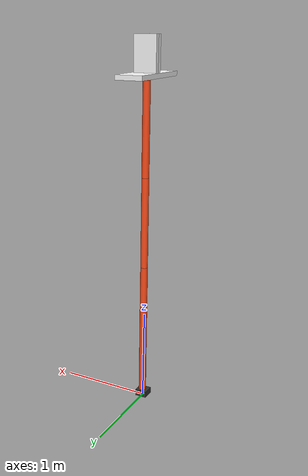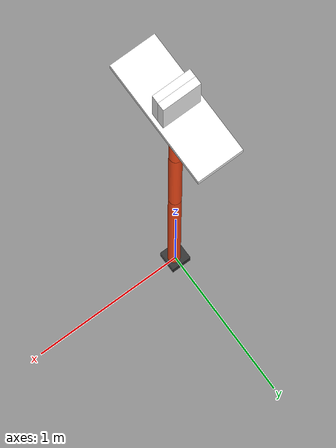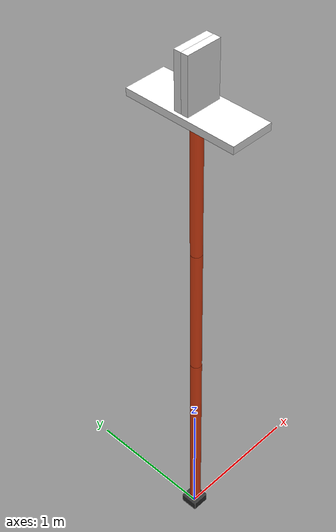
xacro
<?xml version="1.0"?>
<robot xmlns:xacro="http://www.ros.org/wiki/xacro"  name="robot">

    <material name="grey">
        <color rgba="0.2 0.2 0.2 1"/>
    </material>

    <material name="white">
        <color rgba="1 1 1 1"/>
    </material>

    <material name="orange">
        <color rgba="1 0.3 0.1 1"/>
    </material>

    <material name="blue">
        <color rgba="0 0 1 1"/>
    </material>

    <link name="world"></link>

    <joint name="world_to_base" type="fixed">
        <parent link="world" />
        <child link="base" />
        <origin  rpy="1.57 0 0" xyz="0 0 0" />
    </joint>

    <link name="base">
        <visual>
            <origin xyz="0 0.035 0" rpy="0 0 0"/>
            <geometry>
                <box size="0.13 0.07 0.13" />
            </geometry>
            <material name="grey" />
        </visual>
    </link>

    <joint name="base_to_l3" type="revolute">
        <parent link="base" />
        <child link="l3" />
        <origin  rpy="0 0 0" xyz="0 0.07 0" />
        <axis rpy="0 0 0" xyz="0 1 0" />
        <!-- changed axis to rotate around -->
        <limit effort="0.1" lower="-3.1" upper="3.1" velocity="0.2"/>
    </joint>

    <link name="l3">
        <visual>
            <origin xyz="0.005 0 0" rpy="0 1.57 0"/>
            <geometry>
                <cylinder length="0.01" radius="0.01" />
            </geometry>
            <material name="white" />
        </visual>
    </link>

    <joint name="l3_to_l2" type="revolute">
        <parent link="l3" />
        <child link="l2" />
        <origin rpy="0 0 1.57" xyz="0.01 0 0" />
        <axis rpy="0 0 0" xyz="0 0 1" />
        <limit effort="0.1" lower="-3.1" upper="3.1" velocity="0.2"/>
    </joint>

    <link name="l2">
        <visual>
            <origin xyz="0.75 0 0" rpy="0 1.57 0"/>
            <geometry>

                <cylinder length="1.5" radius="0.04" />
            </geometry>
            <material name="orange" />
        </visual>
    </link>

    <joint name="l2_to_l1" type="revolute">
        <parent link="l2" />
        <child link="l1" />
        <origin rpy="0 0 0" xyz="1.5 0 0" />
        <axis rpy="0 0 0" xyz="0 0 1" />
        <limit effort="0.1" lower="-3.1" upper="3.1" velocity="0.2"/>
    </joint>

    <link name="l1">
        <visual>
            <origin xyz="0.5 0 0" rpy="0 1.57 0"/>
            <geometry>

                <cylinder length="1" radius="0.04" />
            </geometry>
            <material name="orange" />
        </visual>
    </link>

    <joint name="l1_to_l0" type="revolute">
        <parent link="l1" />
        <child link="l0" />
        <origin rpy="0 0 0" xyz="1 0 0" />
        <axis rpy="0 0 0" xyz="0 0 1" />
        <limit effort="0.1" lower="-3.1" upper="3.1" velocity="0.2"/>
    </joint>

    <!-- add in l0 to bring into line wiht my robot -->

    <link name="l0">
        <visual>
            <origin xyz="0.5 0 0" rpy="0 1.57 0"/>
            <geometry>

                <cylinder length="1" radius="0.04" />
            </geometry>
            <material name="orange" />
        </visual>
    </link>

    <joint name="l0_to_grip" type="revolute">
        <parent link="l0" />
        <child link="grip" />
        <origin rpy="0 0 0" xyz="1 0 0" />
        <axis rpy="0 0 0" xyz="1 0 0" />
        <!-- change axise -->
        <limit effort="0.1" lower="-3.1" upper="3.1" velocity="0.2"/>
    </joint>

    <link name="grip">
        <visual>
            <origin xyz="0.05 0 0"/>
            <geometry>
                <box size="0.05 0.3 0.8" />
            </geometry>
            <material name="white" />
        </visual>
    </link>

    <joint name="grip_to_claw" type="prismatic">
        <parent link="grip" />
        <child link="claw" />
        <origin rpy="0 0 0" xyz="0.05 0 0.025" />
        <axis rpy="0 0 0" xyz="0 0 1" />
        <!-- change axise -->
        <limit effort="0.1" lower="-0.0" upper="0.35" velocity="0.2"/>
    </joint>

    <link name="claw">
        <visual>
            <origin xyz="0.2 0 0"/>
            <geometry>
                <box size="0.4 0.25 0.05" />
            </geometry>
            <material name="white" />
        </visual>
    </link>

    <joint name="grip_to_claw2" type="prismatic">
        <parent link="grip" />
        <child link="claw2" />
        <origin rpy="0 0 0" xyz="0.05 0 -0.025" />
        <axis rpy="0 0 0" xyz="0 0 1" />
        <!-- change axise -->
        <limit effort="0.1" lower="-0.35" upper="0.0" velocity="0.2"/>
    </joint>

    <link name="claw2">
        <visual>
            <origin xyz="0.2 0 0"/>
            <geometry>
                <box size="0.4 0.25 0.05" />
            </geometry>
            <material name="white" />
        </visual>
    </link>

</robot>
